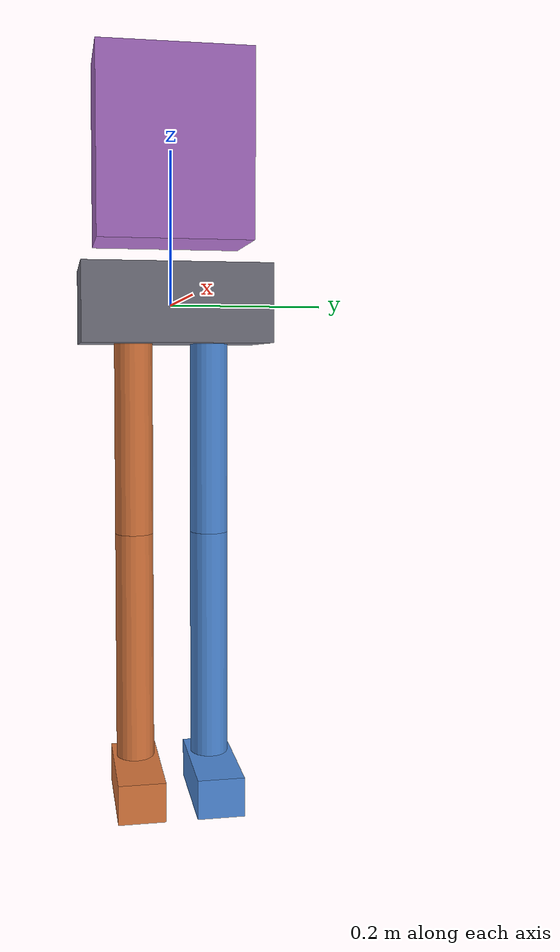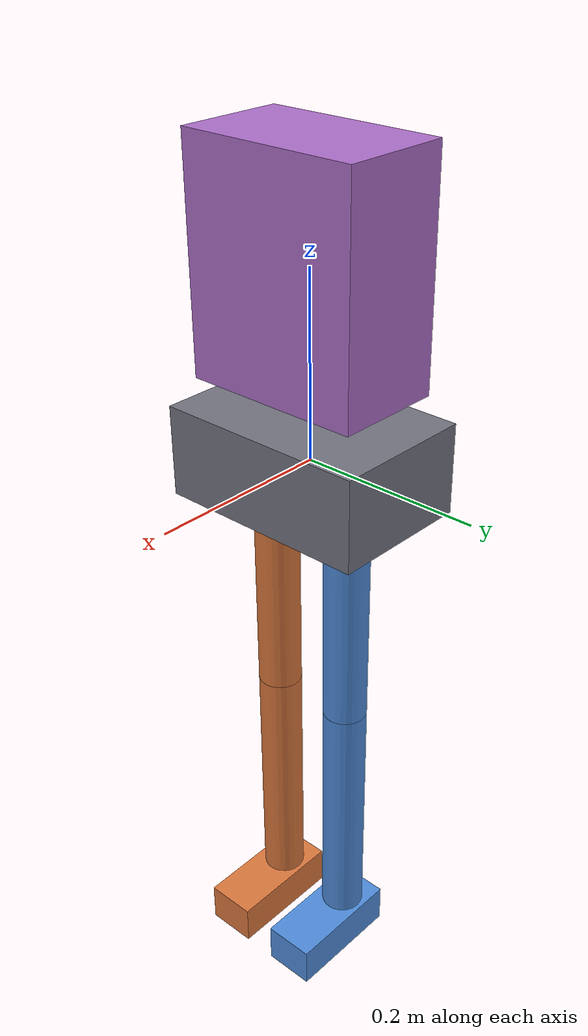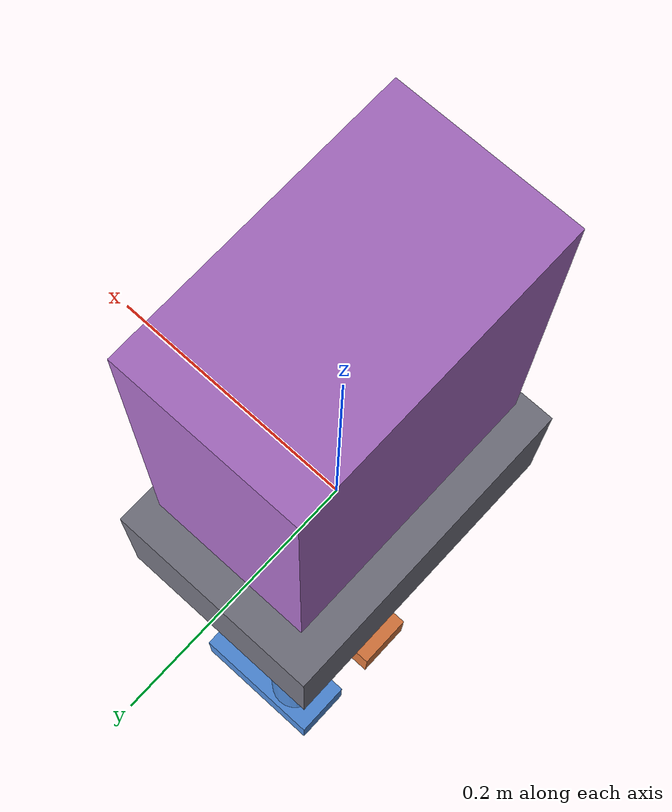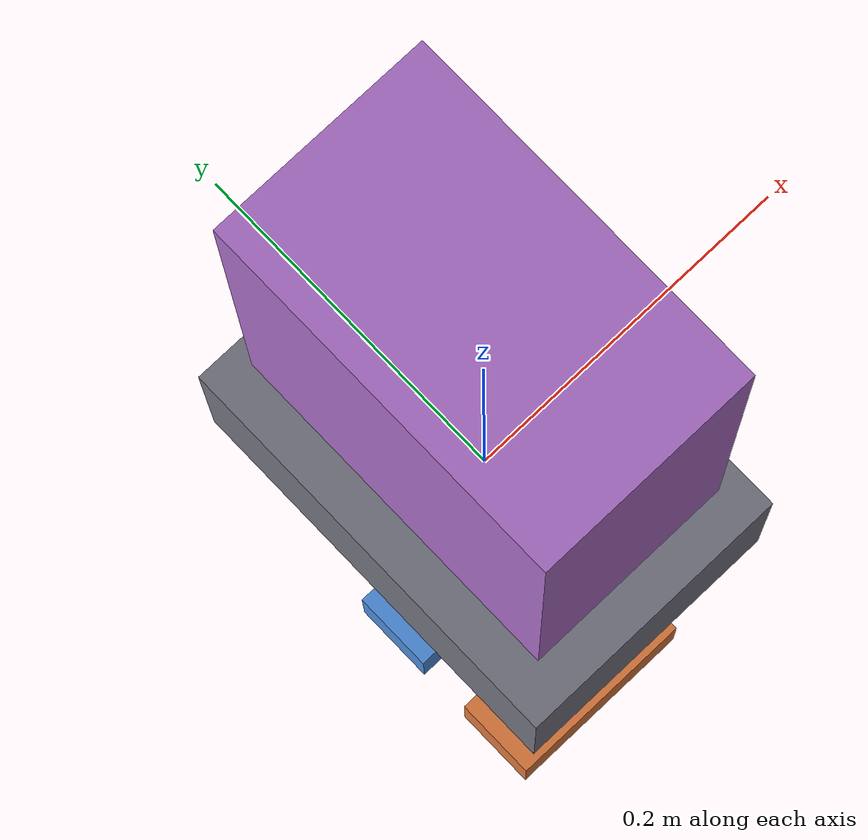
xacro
<?xml version="1.0"?>
<robot name="zeus" xmlns:xacro="http://www.ros.org/wiki/xacro">

  <!-- ==== placeholders - keep in step with robot_config.h ==== -->
  <xacro:property name="thigh_length"  value="0.30"/>
  <xacro:property name="shank_length"  value="0.30"/>
  <xacro:property name="foot_height"   value="0.05"/>
  <xacro:property name="hip_offset_y"  value="0.05"/>
  <xacro:property name="waist_height"  value="0.08"/>

  <xacro:property name="limit_effort"  value="100.0"/>
  <xacro:property name="limit_vel"     value="20.0"/>
  <xacro:property name="link_radius"   value="0.025"/>

  <material name="pelvis_grey"><color rgba="0.45 0.45 0.50 1.0"/></material>
  <material name="left_blue"><color rgba="0.31 0.55 0.86 1.0"/></material>
  <material name="right_orange"><color rgba="0.86 0.47 0.24 1.0"/></material>
  <material name="waist_purple"><color rgba="0.67 0.43 0.78 1.0"/></material>

  <xacro:macro name="revolute" params="name parent child axis xyz">
    <joint name="${name}" type="revolute">
      <parent link="${parent}"/>
      <child link="${child}"/>
      <origin xyz="${xyz}" rpy="0 0 0"/>
      <axis xyz="${axis}"/>
      <limit lower="${-pi}" upper="${pi}" effort="${limit_effort}" velocity="${limit_vel}"/>
    </joint>
  </xacro:macro>

  <!-- A link drawn as a rod hanging `length` below its joint. -->
  <xacro:macro name="rod_link" params="name length material">
    <link name="${name}">
      <visual>
        <origin xyz="0 0 ${-length / 2}" rpy="0 0 0"/>
        <geometry><cylinder radius="${link_radius}" length="${length}"/></geometry>
        <material name="${material}"/>
      </visual>
    </link>
  </xacro:macro>

  <xacro:macro name="leg" params="side sign material">
    <!-- hip_pitch sits at the hip offset; hip_roll shares its origin -->
    <xacro:revolute name="${side}_hip_pitch" parent="base_link" child="${side}_hip_pitch_link"
                    axis="0 1 0" xyz="0 ${sign * hip_offset_y} 0"/>
    <link name="${side}_hip_pitch_link"/>

    <xacro:revolute name="${side}_hip_roll" parent="${side}_hip_pitch_link" child="${side}_thigh"
                    axis="1 0 0" xyz="0 0 0"/>
    <xacro:rod_link name="${side}_thigh" length="${thigh_length}" material="${material}"/>

    <xacro:revolute name="${side}_knee_pitch" parent="${side}_thigh" child="${side}_shank"
                    axis="0 1 0" xyz="0 0 ${-thigh_length}"/>
    <xacro:rod_link name="${side}_shank" length="${shank_length}" material="${material}"/>

    <xacro:revolute name="${side}_ankle_pitch" parent="${side}_shank" child="${side}_foot"
                    axis="0 1 0" xyz="0 0 ${-shank_length}"/>
    <link name="${side}_foot">
      <visual>
        <origin xyz="0.03 0 ${-foot_height / 2}" rpy="0 0 0"/>
        <geometry><box size="0.14 0.06 ${foot_height}"/></geometry>
        <material name="${material}"/>
      </visual>
    </link>

    <!-- The contact point the estimator's forward kinematics reports. -->
    <joint name="${side}_foot_contact_mount" type="fixed">
      <parent link="${side}_foot"/>
      <child link="${side}_foot_contact"/>
      <origin xyz="0 0 ${-foot_height}" rpy="0 0 0"/>
    </joint>
    <link name="${side}_foot_contact"/>
  </xacro:macro>

  <!-- ==== pelvis / IMU ==== -->
  <link name="base_link">
    <visual>
      <geometry><box size="0.16 0.24 0.10"/></geometry>
      <material name="pelvis_grey"/>
    </visual>
  </link>

  <joint name="imu_mount" type="fixed">
    <parent link="base_link"/>
    <child link="imu_link"/>
    <origin xyz="0 0 0" rpy="0 0 0"/>
  </joint>
  <link name="imu_link"/>

  <!-- ==== legs ==== -->
  <xacro:leg side="left"  sign="1"  material="left_blue"/>
  <xacro:leg side="right" sign="-1" material="right_orange"/>

  <!-- ==== waist and torso ==== -->
  <xacro:revolute name="waist_roll" parent="base_link" child="waist_roll_link"
                  axis="1 0 0" xyz="0 0 ${waist_height}"/>
  <link name="waist_roll_link"/>

  <xacro:revolute name="waist_pitch" parent="waist_roll_link" child="torso"
                  axis="0 1 0" xyz="0 0 0"/>
  <link name="torso">
    <visual>
      <origin xyz="0 0 0.12" rpy="0 0 0"/>
      <geometry><box size="0.12 0.20 0.24"/></geometry>
      <material name="waist_purple"/>
    </visual>
  </link>

</robot>
